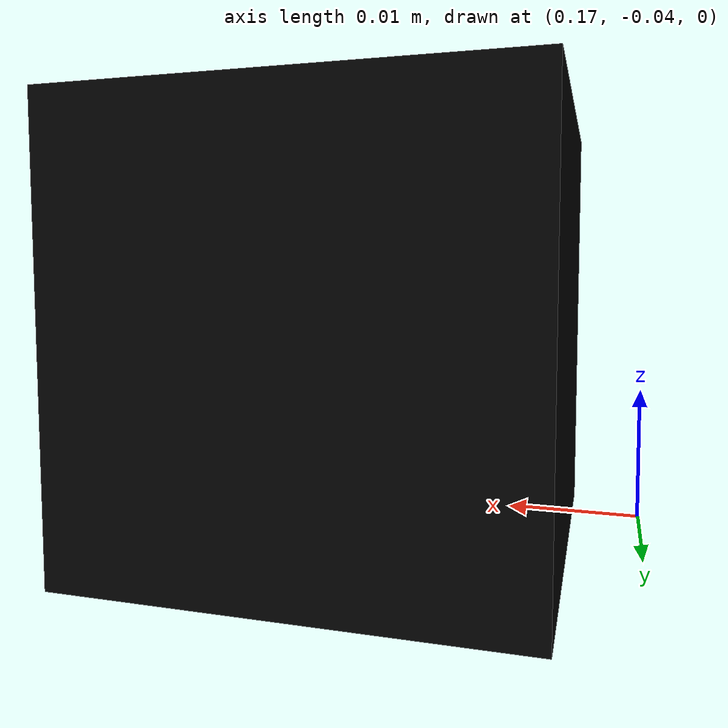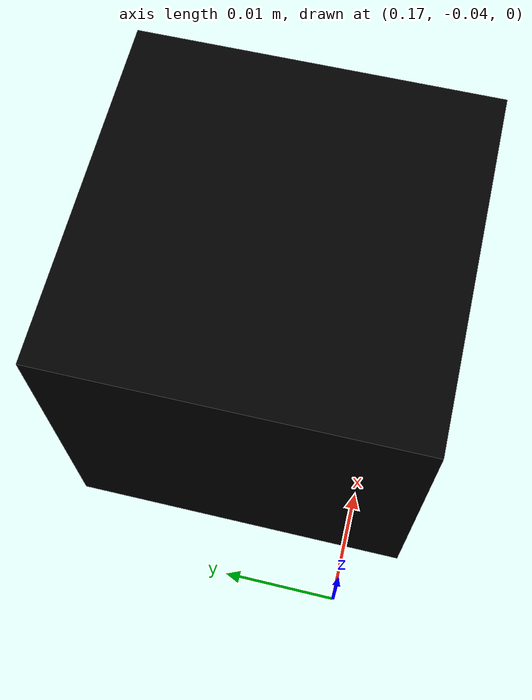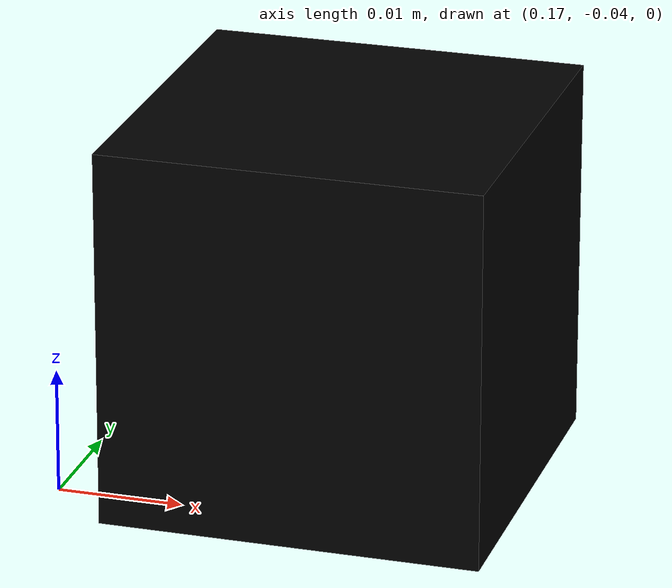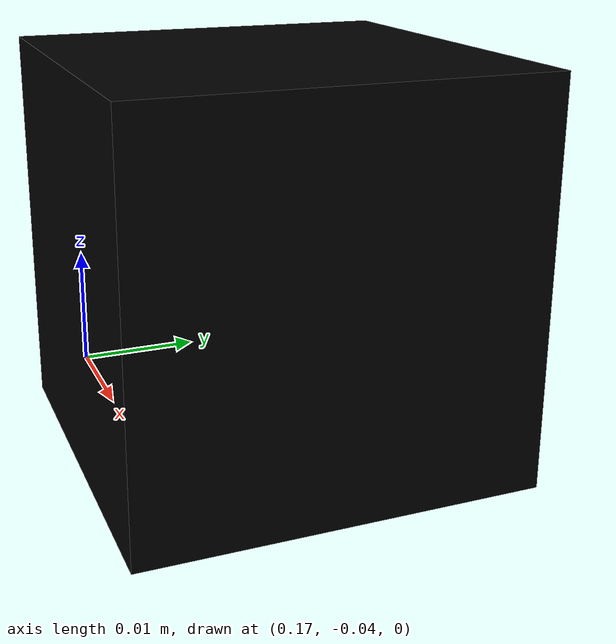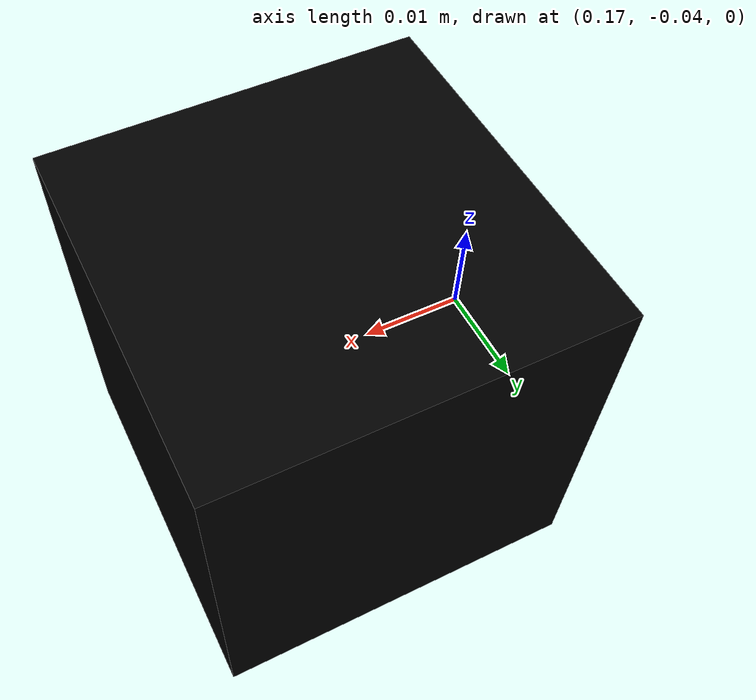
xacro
<?xml version="1.0" ?>
<robot name="box" xmlns:xacro="http://www.ros.org/wiki/xacro">

<link name="base_box_link">
</link>

<link name="box_link">
  <inertial>
    <origin rpy="0 0 0" xyz="0.19 -0.03 0.015"/>
    <mass value="0.2"/>
    <inertia ixx="2.99e-5" ixy="0" ixz="0" iyy="2.99e-5" iyz="0" izz="2.99e-5"/>
  </inertial>
  <visual>
    <origin rpy="0 0 0 " xyz="0.19 -0.03 0.015"/>
    <geometry>
      <box size="0.03 0.03 0.03"/>
    </geometry>
    <material name="black"/>
  </visual>
  <collision>
    <origin rpy="0 0 0" xyz="0.19 -0.03 0.015"/>
    <geometry>
      <box size="0.03 0.03 0.03"/>
    </geometry>
  </collision>
</link>
<xacro:property name="body_color" value="Gazebo/Black" />

<gazebo>
  <plugin name="ground_truth" filename="libgazebo_ros_p3d.so">
    <frameName>map</frameName>
    <bodyName>base_box_link</bodyName>
    <topicName>box_topic</topicName>
    <updateRate>30.0</updateRate>
  </plugin>
</gazebo>

<gazebo reference="object_base_link">
  <material>${body_color}</material>
  <mu1>0.2</mu1>
  <mu2>0.2</mu2>
  <selfCollide>true</selfCollide>
  <gravity>true</gravity>
</gazebo>

<material name="black">
  <color rgba="0.0 0.0 0.0 1.000"/>
</material>

<joint name="clamp1_clamp2_joint" type="fixed">
  <origin rpy="0 0 0" xyz="0 0 0"/>
  <parent link="base_box_link"/>
  <child link="box_link"/>
  <axis xyz="0 0 0"/>
</joint>

</robot>
